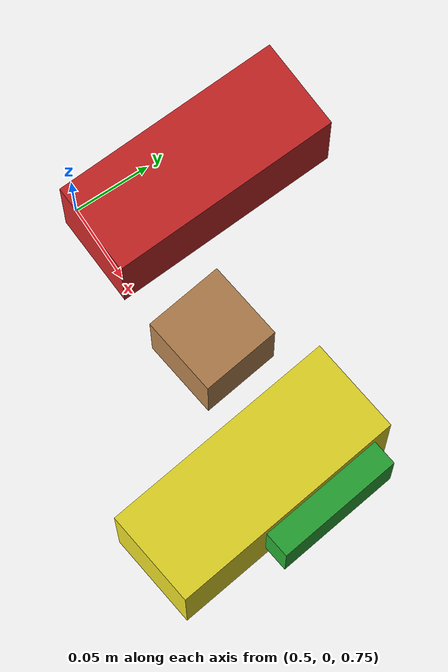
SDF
<sdf version="1.4">
 <world name="default">
  <light name="sun" type="directional">
   <pose>0 0 10 0 -0 0</pose>
   <diffuse>0.8 0.8 0.8 1</diffuse>
   <specular>0.2 0.2 0.2 1</specular>
   <attenuation>
    <range>1000</range>
    <constant>0.9</constant>
    <linear>0.01</linear>
    <quadratic>0.001</quadratic>
   </attenuation>
   <direction>-0.5 0.1 -0.9</direction>
  </light>
  <scene><shadows>0</shadows><ambient>0.4 0.4 0.4 1</ambient><background>0.7 0.7 0.7 1</background></scene>
  <model name="ground_plane">
   <static>1</static>
   <link name="link">
    <collision name="collision">
     <geometry><plane><normal>0 0 1</normal><size>100 100</size></plane></geometry>
     <surface><friction><ode><mu>100</mu><mu2>50</mu2></ode></friction></surface>
    </collision>
    <visual name="visual">
     <cast_shadows>0</cast_shadows>
     <geometry><plane><normal>0 0 1</normal><size>100 100</size></plane></geometry>
     <material>
      <script><uri>file://media/materials/scripts/gazebo.material</uri><name>Gazebo/Grey</name></script>
     </material>
    </visual>
    <velocity_decay><linear>0</linear><angular>0</angular></velocity_decay>
   </link>
  </model>
  <physics type="ode">
   <max_step_size>0.001</max_step_size>
   <real_time_factor>1</real_time_factor>
   <real_time_update_rate>1000</real_time_update_rate>
   <gravity>0 0 -9.8</gravity>
  </physics>
  <spherical_coordinates>
   <surface_model>EARTH_WGS84</surface_model>
   <latitude_deg>0</latitude_deg>
   <longitude_deg>0</longitude_deg>
   <elevation>0</elevation>
   <heading_deg>0</heading_deg>
  </spherical_coordinates>
  <model name="wood_cube_5cm">
   <link name="link">
    <pose>0 0 0.05 0 -0 0</pose>
    <inertial>
     <mass>0.01</mass>
     <inertia>
      <ixx>0.000101167</ixx>
      <ixy>0</ixy>
      <ixz>0</ixz>
      <iyy>6.1167e-05</iyy>
      <iyz>0</iyz>
      <izz>6.1167e-05</izz>
     </inertia>
    </inertial>
    <collision name="collision">
     <geometry><box><size>0.05 0.05 0.05</size></box></geometry>
     <surface><contact><ode><max_vel>0.1</max_vel><min_depth>0.001</min_depth></ode></contact></surface>
    </collision>
    <visual name="visual">
     <geometry><box><size>0.05 0.05 0.05</size></box></geometry>
     <material>
      <script><uri>file://media/materials/scripts/gazebo.material</uri><name>Gazebo/Wood</name></script>
     </material>
    </visual>
    <velocity_decay><linear>0</linear><angular>0</angular></velocity_decay>
   </link>
   <pose>0.618268 0.019389 0.729935 -0.00325 -0.005338 0.136033</pose>
   <static>0</static>
  </model>
  <model name="rectangle_green">
   <link name="link">
    <pose>0 0 0.05 0 -0 0</pose>
    <inertial>
     <mass>0.01</mass>
     <inertia>
      <ixx>0.000101167</ixx>
      <ixy>0</ixy>
      <ixz>0</ixz>
      <iyy>6.1167e-05</iyy>
      <iyz>0</iyz>
      <izz>6.1167e-05</izz>
     </inertia>
    </inertial>
    <collision name="collision">
     <geometry><box><size>0.05 0.08 0.04</size></box></geometry>
     <surface><contact><ode><max_vel>0.1</max_vel><min_depth>0.001</min_depth></ode></contact></surface>
    </collision>
    <visual name="visual">
     <geometry><box><size>0.05 0.08 0.04</size></box></geometry>
     <material>
      <script><uri>file://media/materials/scripts/gazebo.material</uri><name>Gazebo/Green</name></script>
     </material>
    </visual>
    <velocity_decay><linear>0</linear><angular>0</angular></velocity_decay>
   </link>
   <pose>0.718268 0.019389 0.729935 -0.00325 -0.005338 0.136033</pose>
   <static>0</static>
  </model>
  <model name="wood_rectangle">
   <link name="link">
    <pose>0 0 0.05 0 -0 0</pose>
    <inertial>
     <mass>0.01</mass>
     <inertia>
      <ixx>0.000101167</ixx>
      <ixy>0</ixy>
      <ixz>0</ixz>
      <iyy>6.1167e-05</iyy>
      <iyz>0</iyz>
      <izz>6.1167e-05</izz>
     </inertia>
    </inertial>
    <collision name="collision">
     <geometry><box><size>0.06 0.15 0.06</size></box></geometry>
     <surface><contact><ode><max_vel>0.1</max_vel><min_depth>0.001</min_depth></ode></contact></surface>
    </collision>
    <visual name="visual">
     <geometry><box><size>0.06 0.15 0.06</size></box></geometry>
     <material>
      <script><uri>file://media/materials/scripts/gazebo.material</uri><name>Gazebo/Red</name></script>
     </material>
    </visual>
    <velocity_decay><linear>0</linear><angular>0</angular></velocity_decay>
   </link>
   <pose>0.525672 0.068465 0.71985 0.005101 0.006395 -3.08538</pose>
   <static>0</static>
  </model>
  <model name="wood_cube_10cm">
   <link name="link">
    <pose>0 0 0.05 0 -0 0</pose>
    <inertial>
     <mass>0.01</mass>
     <inertia>
      <ixx>0.000101167</ixx>
      <ixy>0</ixy>
      <ixz>0</ixz>
      <iyy>6.1167e-05</iyy>
      <iyz>0</iyz>
      <izz>6.1167e-05</izz>
     </inertia>
    </inertial>
    <collision name="collision">
     <geometry><box><size>0.06 0.15 0.07</size></box></geometry>
     <surface><contact><ode><max_vel>0.1</max_vel><min_depth>0.001</min_depth></ode></contact></surface>
    </collision>
    <visual name="visual">
     <geometry><box><size>0.06 0.15 0.07</size></box></geometry>
     <material>
      <script><uri>file://media/materials/scripts/gazebo.material</uri><name>Gazebo/Yellow</name></script>
     </material>
    </visual>
    <velocity_decay><linear>0</linear><angular>0</angular></velocity_decay>
   </link>
   <pose>0.69998 -0.006872 0.724979 0.000136 -0.000181 0.132198</pose>
   <static>0</static>
  </model>
 </world>
</sdf>
